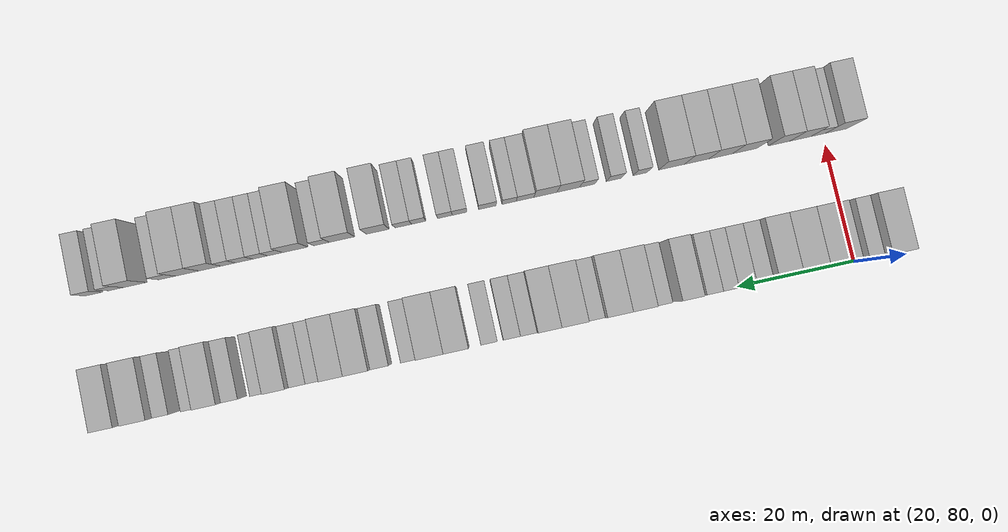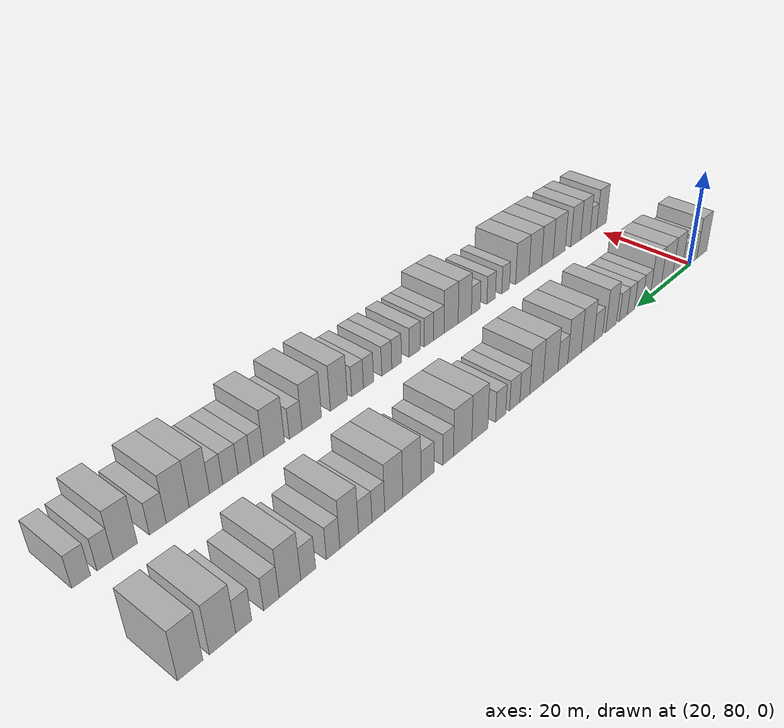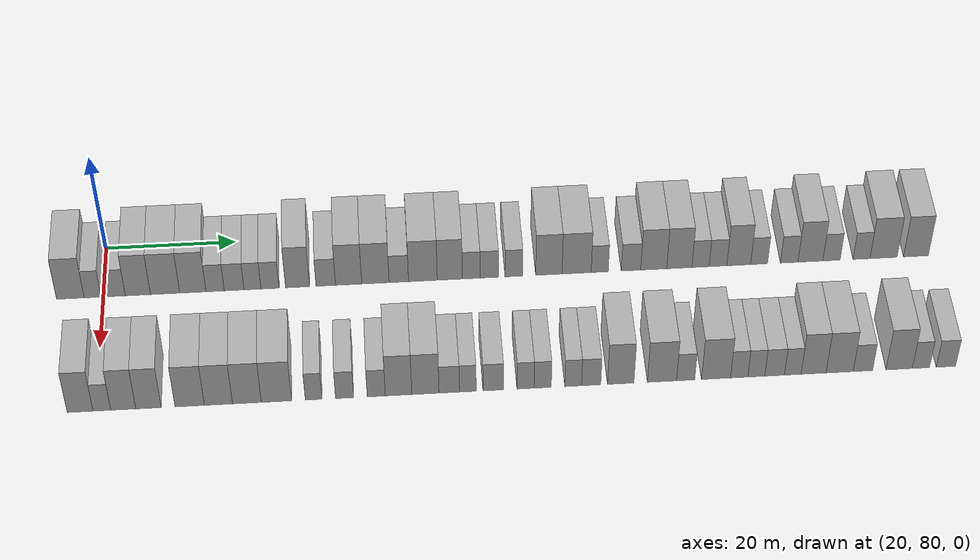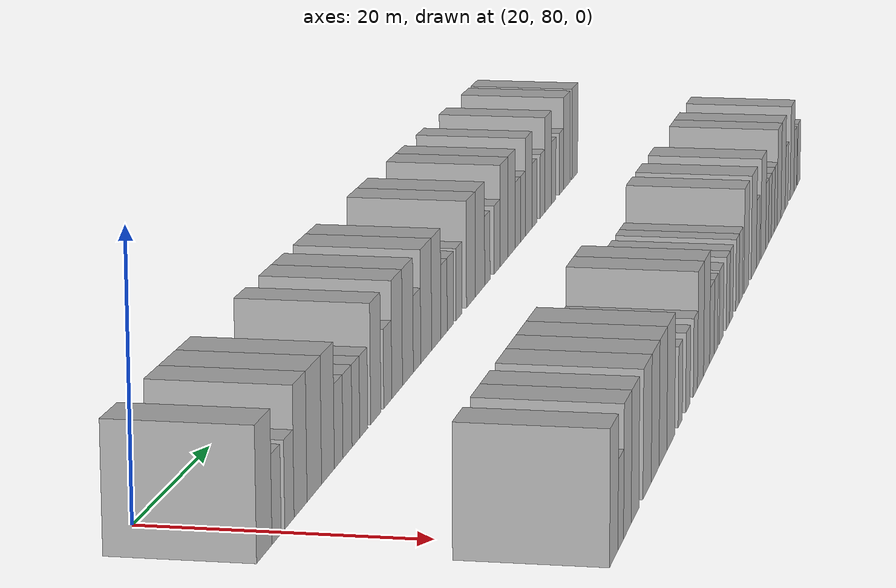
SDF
<sdf version="1.6">
 <world name="default">
  <model name="building_69">
   <static>1</static>
   <pose>25.0000 75.0625 0 0.000000 0.000000 0.000000</pose>
   <link name="link">
    <pose>0 0 4.50 0 0 0</pose>
    <collision name="collision"><geometry><box><size>10.0000 4.1604 9.0000</size></box></geometry></collision>
    <visual name="visual">
     <cast_shadows>0</cast_shadows>
     <geometry><box><size>10.0000 4.1604 9.0000</size></box></geometry>
     <material>
      <script>
       <uri>model://HANNAS_wall/materials/scripts</uri>
       <uri>model://HANNAS_wall/materials/textures</uri>
       <name>vrc/HANNAS_wall</name>
      </script>
     </material>
    </visual>
   </link>
  </model>
  <model name="building_70">
   <static>1</static>
   <pose>25.0000 78.4159 0 0.000000 0.000000 0.000000</pose>
   <link name="link">
    <pose>0 0 3.00 0 0 0</pose>
    <collision name="collision"><geometry><box><size>10.0000 2.5463 6.0000</size></box></geometry></collision>
    <visual name="visual">
     <cast_shadows>0</cast_shadows>
     <geometry><box><size>10.0000 2.5463 6.0000</size></box></geometry>
     <material>
      <script>
       <uri>model://HANNAS_wall/materials/scripts</uri>
       <uri>model://HANNAS_wall/materials/textures</uri>
       <name>vrc/HANNAS_wall</name>
      </script>
     </material>
    </visual>
   </link>
  </model>
  <model name="building_71">
   <static>1</static>
   <pose>25.0000 82.0204 0 0.000000 0.000000 0.000000</pose>
   <link name="link">
    <pose>0 0 3.00 0 0 0</pose>
    <collision name="collision"><geometry><box><size>10.0000 2.6628 6.0000</size></box></geometry></collision>
    <visual name="visual">
     <cast_shadows>0</cast_shadows>
     <geometry><box><size>10.0000 2.6628 6.0000</size></box></geometry>
     <material>
      <script>
       <uri>model://HANNAS_wall/materials/scripts</uri>
       <uri>model://HANNAS_wall/materials/textures</uri>
       <name>vrc/HANNAS_wall</name>
      </script>
     </material>
    </visual>
   </link>
  </model>
  <model name="building_72">
   <static>1</static>
   <pose>25.0000 85.2515 0 0.000000 0.000000 0.000000</pose>
   <link name="link">
    <pose>0 0 4.50 0 0 0</pose>
    <collision name="collision"><geometry><box><size>10.0000 3.7993 9.0000</size></box></geometry></collision>
    <visual name="visual">
     <cast_shadows>0</cast_shadows>
     <geometry><box><size>10.0000 3.7993 9.0000</size></box></geometry>
     <material>
      <script>
       <uri>model://HANNAS_wall/materials/scripts</uri>
       <uri>model://HANNAS_wall/materials/textures</uri>
       <name>vrc/HANNAS_wall</name>
      </script>
     </material>
    </visual>
   </link>
  </model>
  <model name="building_73">
   <static>1</static>
   <pose>25.0000 89.3614 0 0.000000 0.000000 0.000000</pose>
   <link name="link">
    <pose>0 0 4.50 0 0 0</pose>
    <collision name="collision"><geometry><box><size>10.0000 4.4205 9.0000</size></box></geometry></collision>
    <visual name="visual">
     <cast_shadows>0</cast_shadows>
     <geometry><box><size>10.0000 4.4205 9.0000</size></box></geometry>
     <material>
      <script>
       <uri>model://HANNAS_wall/materials/scripts</uri>
       <uri>model://HANNAS_wall/materials/textures</uri>
       <name>vrc/HANNAS_wall</name>
      </script>
     </material>
    </visual>
   </link>
  </model>
  <model name="building_74">
   <static>1</static>
   <pose>25.0000 93.5649 0 0.000000 0.000000 0.000000</pose>
   <link name="link">
    <pose>0 0 4.50 0 0 0</pose>
    <collision name="collision"><geometry><box><size>10.0000 3.9865 9.0000</size></box></geometry></collision>
    <visual name="visual">
     <cast_shadows>0</cast_shadows>
     <geometry><box><size>10.0000 3.9865 9.0000</size></box></geometry>
     <material>
      <script>
       <uri>model://HANNAS_wall/materials/scripts</uri>
       <uri>model://HANNAS_wall/materials/textures</uri>
       <name>vrc/HANNAS_wall</name>
      </script>
     </material>
    </visual>
   </link>
  </model>
  <model name="building_75">
   <static>1</static>
   <pose>25.0000 96.9447 0 0.000000 0.000000 0.000000</pose>
   <link name="link">
    <pose>0 0 3.00 0 0 0</pose>
    <collision name="collision"><geometry><box><size>10.0000 2.7731 6.0000</size></box></geometry></collision>
    <visual name="visual">
     <cast_shadows>0</cast_shadows>
     <geometry><box><size>10.0000 2.7731 6.0000</size></box></geometry>
     <material>
      <script>
       <uri>model://HANNAS_wall/materials/scripts</uri>
       <uri>model://HANNAS_wall/materials/textures</uri>
       <name>vrc/HANNAS_wall</name>
      </script>
     </material>
    </visual>
   </link>
  </model>
  <model name="building_76">
   <static>1</static>
   <pose>25.0000 99.8287 0 0.000000 0.000000 0.000000</pose>
   <link name="link">
    <pose>0 0 3.00 0 0 0</pose>
    <collision name="collision"><geometry><box><size>10.0000 2.9950 6.0000</size></box></geometry></collision>
    <visual name="visual">
     <cast_shadows>0</cast_shadows>
     <geometry><box><size>10.0000 2.9950 6.0000</size></box></geometry>
     <material>
      <script>
       <uri>model://HANNAS_wall/materials/scripts</uri>
       <uri>model://HANNAS_wall/materials/textures</uri>
       <name>vrc/HANNAS_wall</name>
      </script>
     </material>
    </visual>
   </link>
  </model>
  <model name="building_77">
   <static>1</static>
   <pose>25.0000 102.6149 0 0.000000 0.000000 0.000000</pose>
   <link name="link">
    <pose>0 0 3.00 0 0 0</pose>
    <collision name="collision"><geometry><box><size>10.0000 2.5773 6.0000</size></box></geometry></collision>
    <visual name="visual">
     <cast_shadows>0</cast_shadows>
     <geometry><box><size>10.0000 2.5773 6.0000</size></box></geometry>
     <material>
      <script>
       <uri>model://HANNAS_wall/materials/scripts</uri>
       <uri>model://HANNAS_wall/materials/textures</uri>
       <name>vrc/HANNAS_wall</name>
      </script>
     </material>
    </visual>
   </link>
  </model>
  <model name="building_78">
   <static>1</static>
   <pose>25.0000 105.2779 0 0.000000 0.000000 0.000000</pose>
   <link name="link">
    <pose>0 0 3.00 0 0 0</pose>
    <collision name="collision"><geometry><box><size>10.0000 2.7487 6.0000</size></box></geometry></collision>
    <visual name="visual">
     <cast_shadows>0</cast_shadows>
     <geometry><box><size>10.0000 2.7487 6.0000</size></box></geometry>
     <material>
      <script>
       <uri>model://HANNAS_wall/materials/scripts</uri>
       <uri>model://HANNAS_wall/materials/textures</uri>
       <name>vrc/HANNAS_wall</name>
      </script>
     </material>
    </visual>
   </link>
  </model>
  <model name="building_79">
   <static>1</static>
   <pose>25.0000 109.4675 0 0.000000 0.000000 0.000000</pose>
   <link name="link">
    <pose>0 0 4.50 0 0 0</pose>
    <collision name="collision"><geometry><box><size>10.0000 3.6304 9.0000</size></box></geometry></collision>
    <visual name="visual">
     <cast_shadows>0</cast_shadows>
     <geometry><box><size>10.0000 3.6304 9.0000</size></box></geometry>
     <material>
      <script>
       <uri>model://HANNAS_wall/materials/scripts</uri>
       <uri>model://HANNAS_wall/materials/textures</uri>
       <name>vrc/HANNAS_wall</name>
      </script>
     </material>
    </visual>
   </link>
  </model>
  <model name="building_80">
   <static>1</static>
   <pose>25.0000 113.7620 0 0.000000 0.000000 0.000000</pose>
   <link name="link">
    <pose>0 0 3.00 0 0 0</pose>
    <collision name="collision"><geometry><box><size>10.0000 2.9586 6.0000</size></box></geometry></collision>
    <visual name="visual">
     <cast_shadows>0</cast_shadows>
     <geometry><box><size>10.0000 2.9586 6.0000</size></box></geometry>
     <material>
      <script>
       <uri>model://HANNAS_wall/materials/scripts</uri>
       <uri>model://HANNAS_wall/materials/textures</uri>
       <name>vrc/HANNAS_wall</name>
      </script>
     </material>
    </visual>
   </link>
  </model>
  <model name="building_81">
   <static>1</static>
   <pose>25.0000 117.2376 0 0.000000 0.000000 0.000000</pose>
   <link name="link">
    <pose>0 0 4.50 0 0 0</pose>
    <collision name="collision"><geometry><box><size>10.0000 3.9926 9.0000</size></box></geometry></collision>
    <visual name="visual">
     <cast_shadows>0</cast_shadows>
     <geometry><box><size>10.0000 3.9926 9.0000</size></box></geometry>
     <material>
      <script>
       <uri>model://HANNAS_wall/materials/scripts</uri>
       <uri>model://HANNAS_wall/materials/textures</uri>
       <name>vrc/HANNAS_wall</name>
      </script>
     </material>
    </visual>
   </link>
  </model>
  <model name="building_82">
   <static>1</static>
   <pose>25.0000 121.3221 0 0.000000 0.000000 0.000000</pose>
   <link name="link">
    <pose>0 0 4.50 0 0 0</pose>
    <collision name="collision"><geometry><box><size>10.0000 4.1764 9.0000</size></box></geometry></collision>
    <visual name="visual">
     <cast_shadows>0</cast_shadows>
     <geometry><box><size>10.0000 4.1764 9.0000</size></box></geometry>
     <material>
      <script>
       <uri>model://HANNAS_wall/materials/scripts</uri>
       <uri>model://HANNAS_wall/materials/textures</uri>
       <name>vrc/HANNAS_wall</name>
      </script>
     </material>
    </visual>
   </link>
  </model>
  <model name="building_83">
   <static>1</static>
   <pose>25.0000 124.8883 0 0.000000 0.000000 0.000000</pose>
   <link name="link">
    <pose>0 0 3.00 0 0 0</pose>
    <collision name="collision"><geometry><box><size>10.0000 2.9561 6.0000</size></box></geometry></collision>
    <visual name="visual">
     <cast_shadows>0</cast_shadows>
     <geometry><box><size>10.0000 2.9561 6.0000</size></box></geometry>
     <material>
      <script>
       <uri>model://HANNAS_wall/materials/scripts</uri>
       <uri>model://HANNAS_wall/materials/textures</uri>
       <name>vrc/HANNAS_wall</name>
      </script>
     </material>
    </visual>
   </link>
  </model>
  <model name="building_84">
   <static>1</static>
   <pose>25.0000 128.5668 0 0.000000 0.000000 0.000000</pose>
   <link name="link">
    <pose>0 0 4.50 0 0 0</pose>
    <collision name="collision"><geometry><box><size>10.0000 4.4007 9.0000</size></box></geometry></collision>
    <visual name="visual">
     <cast_shadows>0</cast_shadows>
     <geometry><box><size>10.0000 4.4007 9.0000</size></box></geometry>
     <material>
      <script>
       <uri>model://HANNAS_wall/materials/scripts</uri>
       <uri>model://HANNAS_wall/materials/textures</uri>
       <name>vrc/HANNAS_wall</name>
      </script>
     </material>
    </visual>
   </link>
  </model>
  <model name="building_85">
   <static>1</static>
   <pose>25.0000 132.6856 0 0.000000 0.000000 0.000000</pose>
   <link name="link">
    <pose>0 0 4.50 0 0 0</pose>
    <collision name="collision"><geometry><box><size>10.0000 3.8369 9.0000</size></box></geometry></collision>
    <visual name="visual">
     <cast_shadows>0</cast_shadows>
     <geometry><box><size>10.0000 3.8369 9.0000</size></box></geometry>
     <material>
      <script>
       <uri>model://HANNAS_wall/materials/scripts</uri>
       <uri>model://HANNAS_wall/materials/textures</uri>
       <name>vrc/HANNAS_wall</name>
      </script>
     </material>
    </visual>
   </link>
  </model>
  <model name="building_86">
   <static>1</static>
   <pose>25.0000 135.9639 0 0.000000 0.000000 0.000000</pose>
   <link name="link">
    <pose>0 0 3.00 0 0 0</pose>
    <collision name="collision"><geometry><box><size>10.0000 2.7199 6.0000</size></box></geometry></collision>
    <visual name="visual">
     <cast_shadows>0</cast_shadows>
     <geometry><box><size>10.0000 2.7199 6.0000</size></box></geometry>
     <material>
      <script>
       <uri>model://HANNAS_wall/materials/scripts</uri>
       <uri>model://HANNAS_wall/materials/textures</uri>
       <name>vrc/HANNAS_wall</name>
      </script>
     </material>
    </visual>
   </link>
  </model>
  <model name="building_87">
   <static>1</static>
   <pose>25.0000 138.7316 0 0.000000 0.000000 0.000000</pose>
   <link name="link">
    <pose>0 0 3.00 0 0 0</pose>
    <collision name="collision"><geometry><box><size>10.0000 2.8155 6.0000</size></box></geometry></collision>
    <visual name="visual">
     <cast_shadows>0</cast_shadows>
     <geometry><box><size>10.0000 2.8155 6.0000</size></box></geometry>
     <material>
      <script>
       <uri>model://HANNAS_wall/materials/scripts</uri>
       <uri>model://HANNAS_wall/materials/textures</uri>
       <name>vrc/HANNAS_wall</name>
      </script>
     </material>
    </visual>
   </link>
  </model>
  <model name="building_88">
   <static>1</static>
   <pose>25.0000 142.4893 0 0.000000 0.000000 0.000000</pose>
   <link name="link">
    <pose>0 0 3.00 0 0 0</pose>
    <collision name="collision"><geometry><box><size>10.0000 2.6997 6.0000</size></box></geometry></collision>
    <visual name="visual">
     <cast_shadows>0</cast_shadows>
     <geometry><box><size>10.0000 2.6997 6.0000</size></box></geometry>
     <material>
      <script>
       <uri>model://HANNAS_wall/materials/scripts</uri>
       <uri>model://HANNAS_wall/materials/textures</uri>
       <name>vrc/HANNAS_wall</name>
      </script>
     </material>
    </visual>
   </link>
  </model>
  <model name="building_89">
   <static>1</static>
   <pose>25.0000 147.8630 0 0.000000 0.000000 0.000000</pose>
   <link name="link">
    <pose>0 0 4.50 0 0 0</pose>
    <collision name="collision"><geometry><box><size>10.0000 4.0477 9.0000</size></box></geometry></collision>
    <visual name="visual">
     <cast_shadows>0</cast_shadows>
     <geometry><box><size>10.0000 4.0477 9.0000</size></box></geometry>
     <material>
      <script>
       <uri>model://HANNAS_wall/materials/scripts</uri>
       <uri>model://HANNAS_wall/materials/textures</uri>
       <name>vrc/HANNAS_wall</name>
      </script>
     </material>
    </visual>
   </link>
  </model>
  <model name="building_90">
   <static>1</static>
   <pose>25.0000 152.1242 0 0.000000 0.000000 0.000000</pose>
   <link name="link">
    <pose>0 0 4.50 0 0 0</pose>
    <collision name="collision"><geometry><box><size>10.0000 4.4747 9.0000</size></box></geometry></collision>
    <visual name="visual">
     <cast_shadows>0</cast_shadows>
     <geometry><box><size>10.0000 4.4747 9.0000</size></box></geometry>
     <material>
      <script>
       <uri>model://HANNAS_wall/materials/scripts</uri>
       <uri>model://HANNAS_wall/materials/textures</uri>
       <name>vrc/HANNAS_wall</name>
      </script>
     </material>
    </visual>
   </link>
  </model>
  <model name="building_91">
   <static>1</static>
   <pose>25.0000 155.6704 0 0.000000 0.000000 0.000000</pose>
   <link name="link">
    <pose>0 0 3.00 0 0 0</pose>
    <collision name="collision"><geometry><box><size>10.0000 2.6176 6.0000</size></box></geometry></collision>
    <visual name="visual">
     <cast_shadows>0</cast_shadows>
     <geometry><box><size>10.0000 2.6176 6.0000</size></box></geometry>
     <material>
      <script>
       <uri>model://HANNAS_wall/materials/scripts</uri>
       <uri>model://HANNAS_wall/materials/textures</uri>
       <name>vrc/HANNAS_wall</name>
      </script>
     </material>
    </visual>
   </link>
  </model>
  <model name="building_92">
   <static>1</static>
   <pose>25.0000 160.4781 0 0.000000 0.000000 0.000000</pose>
   <link name="link">
    <pose>0 0 3.00 0 0 0</pose>
    <collision name="collision"><geometry><box><size>10.0000 2.9977 6.0000</size></box></geometry></collision>
    <visual name="visual">
     <cast_shadows>0</cast_shadows>
     <geometry><box><size>10.0000 2.9977 6.0000</size></box></geometry>
     <material>
      <script>
       <uri>model://HANNAS_wall/materials/scripts</uri>
       <uri>model://HANNAS_wall/materials/textures</uri>
       <name>vrc/HANNAS_wall</name>
      </script>
     </material>
    </visual>
   </link>
  </model>
  <model name="building_93">
   <static>1</static>
   <pose>25.0000 163.9876 0 0.000000 0.000000 0.000000</pose>
   <link name="link">
    <pose>0 0 4.50 0 0 0</pose>
    <collision name="collision"><geometry><box><size>10.0000 4.0214 9.0000</size></box></geometry></collision>
    <visual name="visual">
     <cast_shadows>0</cast_shadows>
     <geometry><box><size>10.0000 4.0214 9.0000</size></box></geometry>
     <material>
      <script>
       <uri>model://HANNAS_wall/materials/scripts</uri>
       <uri>model://HANNAS_wall/materials/textures</uri>
       <name>vrc/HANNAS_wall</name>
      </script>
     </material>
    </visual>
   </link>
  </model>
  <model name="building_94">
   <static>1</static>
   <pose>25.0000 167.9422 0 0.000000 0.000000 0.000000</pose>
   <link name="link">
    <pose>0 0 4.50 0 0 0</pose>
    <collision name="collision"><geometry><box><size>10.0000 3.8877 9.0000</size></box></geometry></collision>
    <visual name="visual">
     <cast_shadows>0</cast_shadows>
     <geometry><box><size>10.0000 3.8877 9.0000</size></box></geometry>
     <material>
      <script>
       <uri>model://HANNAS_wall/materials/scripts</uri>
       <uri>model://HANNAS_wall/materials/textures</uri>
       <name>vrc/HANNAS_wall</name>
      </script>
     </material>
    </visual>
   </link>
  </model>
  <model name="building_95">
   <static>1</static>
   <pose>25.0000 171.2118 0 0.000000 0.000000 0.000000</pose>
   <link name="link">
    <pose>0 0 3.00 0 0 0</pose>
    <collision name="collision"><geometry><box><size>10.0000 2.6516 6.0000</size></box></geometry></collision>
    <visual name="visual">
     <cast_shadows>0</cast_shadows>
     <geometry><box><size>10.0000 2.6516 6.0000</size></box></geometry>
     <material>
      <script>
       <uri>model://HANNAS_wall/materials/scripts</uri>
       <uri>model://HANNAS_wall/materials/textures</uri>
       <name>vrc/HANNAS_wall</name>
      </script>
     </material>
    </visual>
   </link>
  </model>
  <model name="building_96">
   <static>1</static>
   <pose>25.0000 173.9043 0 0.000000 0.000000 0.000000</pose>
   <link name="link">
    <pose>0 0 3.00 0 0 0</pose>
    <collision name="collision"><geometry><box><size>10.0000 2.7334 6.0000</size></box></geometry></collision>
    <visual name="visual">
     <cast_shadows>0</cast_shadows>
     <geometry><box><size>10.0000 2.7334 6.0000</size></box></geometry>
     <material>
      <script>
       <uri>model://HANNAS_wall/materials/scripts</uri>
       <uri>model://HANNAS_wall/materials/textures</uri>
       <name>vrc/HANNAS_wall</name>
      </script>
     </material>
    </visual>
   </link>
  </model>
  <model name="building_97">
   <static>1</static>
   <pose>25.0000 177.1086 0 0.000000 0.000000 0.000000</pose>
   <link name="link">
    <pose>0 0 4.50 0 0 0</pose>
    <collision name="collision"><geometry><box><size>10.0000 3.6752 9.0000</size></box></geometry></collision>
    <visual name="visual">
     <cast_shadows>0</cast_shadows>
     <geometry><box><size>10.0000 3.6752 9.0000</size></box></geometry>
     <material>
      <script>
       <uri>model://HANNAS_wall/materials/scripts</uri>
       <uri>model://HANNAS_wall/materials/textures</uri>
       <name>vrc/HANNAS_wall</name>
      </script>
     </material>
    </visual>
   </link>
  </model>
  <model name="building_98">
   <static>1</static>
   <pose>25.0000 180.2520 0 0.000000 0.000000 0.000000</pose>
   <link name="link">
    <pose>0 0 3.00 0 0 0</pose>
    <collision name="collision"><geometry><box><size>10.0000 2.6116 6.0000</size></box></geometry></collision>
    <visual name="visual">
     <cast_shadows>0</cast_shadows>
     <geometry><box><size>10.0000 2.6116 6.0000</size></box></geometry>
     <material>
      <script>
       <uri>model://HANNAS_wall/materials/scripts</uri>
       <uri>model://HANNAS_wall/materials/textures</uri>
       <name>vrc/HANNAS_wall</name>
      </script>
     </material>
    </visual>
   </link>
  </model>
  <model name="building_99">
   <static>1</static>
   <pose>25.0000 184.9228 0 0.000000 0.000000 0.000000</pose>
   <link name="link">
    <pose>0 0 3.00 0 0 0</pose>
    <collision name="collision"><geometry><box><size>10.0000 2.7301 6.0000</size></box></geometry></collision>
    <visual name="visual">
     <cast_shadows>0</cast_shadows>
     <geometry><box><size>10.0000 2.7301 6.0000</size></box></geometry>
     <material>
      <script>
       <uri>model://HANNAS_wall/materials/scripts</uri>
       <uri>model://HANNAS_wall/materials/textures</uri>
       <name>vrc/HANNAS_wall</name>
      </script>
     </material>
    </visual>
   </link>
  </model>
  <model name="building_100">
   <static>1</static>
   <pose>25.0000 188.2151 0 0.000000 0.000000 0.000000</pose>
   <link name="link">
    <pose>0 0 4.50 0 0 0</pose>
    <collision name="collision"><geometry><box><size>10.0000 3.8546 9.0000</size></box></geometry></collision>
    <visual name="visual">
     <cast_shadows>0</cast_shadows>
     <geometry><box><size>10.0000 3.8546 9.0000</size></box></geometry>
     <material>
      <script>
       <uri>model://HANNAS_wall/materials/scripts</uri>
       <uri>model://HANNAS_wall/materials/textures</uri>
       <name>vrc/HANNAS_wall</name>
      </script>
     </material>
    </visual>
   </link>
  </model>
  <model name="building_101">
   <static>1</static>
   <pose>25.0000 191.4806 0 0.000000 0.000000 0.000000</pose>
   <link name="link">
    <pose>0 0 3.00 0 0 0</pose>
    <collision name="collision"><geometry><box><size>10.0000 2.6764 6.0000</size></box></geometry></collision>
    <visual name="visual">
     <cast_shadows>0</cast_shadows>
     <geometry><box><size>10.0000 2.6764 6.0000</size></box></geometry>
     <material>
      <script>
       <uri>model://HANNAS_wall/materials/scripts</uri>
       <uri>model://HANNAS_wall/materials/textures</uri>
       <name>vrc/HANNAS_wall</name>
      </script>
     </material>
    </visual>
   </link>
  </model>
  <model name="building_102">
   <static>1</static>
   <pose>25.0000 196.1406 0 0.000000 0.000000 0.000000</pose>
   <link name="link">
    <pose>0 0 3.00 0 0 0</pose>
    <collision name="collision"><geometry><box><size>10.0000 2.6436 6.0000</size></box></geometry></collision>
    <visual name="visual">
     <cast_shadows>0</cast_shadows>
     <geometry><box><size>10.0000 2.6436 6.0000</size></box></geometry>
     <material>
      <script>
       <uri>model://HANNAS_wall/materials/scripts</uri>
       <uri>model://HANNAS_wall/materials/textures</uri>
       <name>vrc/HANNAS_wall</name>
      </script>
     </material>
    </visual>
   </link>
  </model>
  <model name="building_103">
   <static>1</static>
   <pose>25.0000 199.5663 0 0.000000 0.000000 0.000000</pose>
   <link name="link">
    <pose>0 0 4.50 0 0 0</pose>
    <collision name="collision"><geometry><box><size>10.0000 4.2078 9.0000</size></box></geometry></collision>
    <visual name="visual">
     <cast_shadows>0</cast_shadows>
     <geometry><box><size>10.0000 4.2078 9.0000</size></box></geometry>
     <material>
      <script>
       <uri>model://HANNAS_wall/materials/scripts</uri>
       <uri>model://HANNAS_wall/materials/textures</uri>
       <name>vrc/HANNAS_wall</name>
      </script>
     </material>
    </visual>
   </link>
  </model>
  <model name="building_104">
   <static>1</static>
   <pose>25.0000 204.5989 0 0.000000 0.000000 0.000000</pose>
   <link name="link">
    <pose>0 0 4.50 0 0 0</pose>
    <collision name="collision"><geometry><box><size>10.0000 3.8574 9.0000</size></box></geometry></collision>
    <visual name="visual">
     <cast_shadows>0</cast_shadows>
     <geometry><box><size>10.0000 3.8574 9.0000</size></box></geometry>
     <material>
      <script>
       <uri>model://HANNAS_wall/materials/scripts</uri>
       <uri>model://HANNAS_wall/materials/textures</uri>
       <name>vrc/HANNAS_wall</name>
      </script>
     </material>
    </visual>
   </link>
  </model>
  <model name="building_177">
   <static>1</static>
   <pose>47.0000 77.6579 0 0.000000 0.000000 0.000000</pose>
   <link name="link">
    <pose>0 0 4.50 0 0 0</pose>
    <collision name="collision"><geometry><box><size>10.0000 3.7333 9.0000</size></box></geometry></collision>
    <visual name="visual">
     <cast_shadows>0</cast_shadows>
     <geometry><box><size>10.0000 3.7333 9.0000</size></box></geometry>
     <material>
      <script>
       <uri>model://HANNAS_wall/materials/scripts</uri>
       <uri>model://HANNAS_wall/materials/textures</uri>
       <name>vrc/HANNAS_wall</name>
      </script>
     </material>
    </visual>
   </link>
  </model>
  <model name="building_178">
   <static>1</static>
   <pose>47.0000 80.8089 0 0.000000 0.000000 0.000000</pose>
   <link name="link">
    <pose>0 0 3.00 0 0 0</pose>
    <collision name="collision"><geometry><box><size>10.0000 2.5687 6.0000</size></box></geometry></collision>
    <visual name="visual">
     <cast_shadows>0</cast_shadows>
     <geometry><box><size>10.0000 2.5687 6.0000</size></box></geometry>
     <material>
      <script>
       <uri>model://HANNAS_wall/materials/scripts</uri>
       <uri>model://HANNAS_wall/materials/textures</uri>
       <name>vrc/HANNAS_wall</name>
      </script>
     </material>
    </visual>
   </link>
  </model>
  <model name="building_179">
   <static>1</static>
   <pose>47.0000 83.9066 0 0.000000 0.000000 0.000000</pose>
   <link name="link">
    <pose>0 0 4.50 0 0 0</pose>
    <collision name="collision"><geometry><box><size>10.0000 3.6269 9.0000</size></box></geometry></collision>
    <visual name="visual">
     <cast_shadows>0</cast_shadows>
     <geometry><box><size>10.0000 3.6269 9.0000</size></box></geometry>
     <material>
      <script>
       <uri>model://HANNAS_wall/materials/scripts</uri>
       <uri>model://HANNAS_wall/materials/textures</uri>
       <name>vrc/HANNAS_wall</name>
      </script>
     </material>
    </visual>
   </link>
  </model>
  <model name="building_180">
   <static>1</static>
   <pose>47.0000 87.5635 0 0.000000 0.000000 0.000000</pose>
   <link name="link">
    <pose>0 0 4.50 0 0 0</pose>
    <collision name="collision"><geometry><box><size>10.0000 3.6869 9.0000</size></box></geometry></collision>
    <visual name="visual">
     <cast_shadows>0</cast_shadows>
     <geometry><box><size>10.0000 3.6869 9.0000</size></box></geometry>
     <material>
      <script>
       <uri>model://HANNAS_wall/materials/scripts</uri>
       <uri>model://HANNAS_wall/materials/textures</uri>
       <name>vrc/HANNAS_wall</name>
      </script>
     </material>
    </visual>
   </link>
  </model>
  <model name="building_181">
   <static>1</static>
   <pose>47.0000 93.5370 0 0.000000 0.000000 0.000000</pose>
   <link name="link">
    <pose>0 0 4.50 0 0 0</pose>
    <collision name="collision"><geometry><box><size>10.0000 4.2600 9.0000</size></box></geometry></collision>
    <visual name="visual">
     <cast_shadows>0</cast_shadows>
     <geometry><box><size>10.0000 4.2600 9.0000</size></box></geometry>
     <material>
      <script>
       <uri>model://HANNAS_wall/materials/scripts</uri>
       <uri>model://HANNAS_wall/materials/textures</uri>
       <name>vrc/HANNAS_wall</name>
      </script>
     </material>
    </visual>
   </link>
  </model>
  <model name="building_182">
   <static>1</static>
   <pose>47.0000 97.7146 0 0.000000 0.000000 0.000000</pose>
   <link name="link">
    <pose>0 0 4.50 0 0 0</pose>
    <collision name="collision"><geometry><box><size>10.0000 4.0952 9.0000</size></box></geometry></collision>
    <visual name="visual">
     <cast_shadows>0</cast_shadows>
     <geometry><box><size>10.0000 4.0952 9.0000</size></box></geometry>
     <material>
      <script>
       <uri>model://HANNAS_wall/materials/scripts</uri>
       <uri>model://HANNAS_wall/materials/textures</uri>
       <name>vrc/HANNAS_wall</name>
      </script>
     </material>
    </visual>
   </link>
  </model>
  <model name="building_183">
   <static>1</static>
   <pose>47.0000 101.8665 0 0.000000 0.000000 0.000000</pose>
   <link name="link">
    <pose>0 0 4.50 0 0 0</pose>
    <collision name="collision"><geometry><box><size>10.0000 4.2086 9.0000</size></box></geometry></collision>
    <visual name="visual">
     <cast_shadows>0</cast_shadows>
     <geometry><box><size>10.0000 4.2086 9.0000</size></box></geometry>
     <material>
      <script>
       <uri>model://HANNAS_wall/materials/scripts</uri>
       <uri>model://HANNAS_wall/materials/textures</uri>
       <name>vrc/HANNAS_wall</name>
      </script>
     </material>
    </visual>
   </link>
  </model>
  <model name="building_184">
   <static>1</static>
   <pose>47.0000 106.1769 0 0.000000 0.000000 0.000000</pose>
   <link name="link">
    <pose>0 0 4.50 0 0 0</pose>
    <collision name="collision"><geometry><box><size>10.0000 4.4122 9.0000</size></box></geometry></collision>
    <visual name="visual">
     <cast_shadows>0</cast_shadows>
     <geometry><box><size>10.0000 4.4122 9.0000</size></box></geometry>
     <material>
      <script>
       <uri>model://HANNAS_wall/materials/scripts</uri>
       <uri>model://HANNAS_wall/materials/textures</uri>
       <name>vrc/HANNAS_wall</name>
      </script>
     </material>
    </visual>
   </link>
  </model>
  <model name="building_185">
   <static>1</static>
   <pose>47.0000 111.5953 0 0.000000 0.000000 0.000000</pose>
   <link name="link">
    <pose>0 0 3.00 0 0 0</pose>
    <collision name="collision"><geometry><box><size>10.0000 2.4246 6.0000</size></box></geometry></collision>
    <visual name="visual">
     <cast_shadows>0</cast_shadows>
     <geometry><box><size>10.0000 2.4246 6.0000</size></box></geometry>
     <material>
      <script>
       <uri>model://HANNAS_wall/materials/scripts</uri>
       <uri>model://HANNAS_wall/materials/textures</uri>
       <name>vrc/HANNAS_wall</name>
      </script>
     </material>
    </visual>
   </link>
  </model>
  <model name="building_186">
   <static>1</static>
   <pose>47.0000 116.1195 0 0.000000 0.000000 0.000000</pose>
   <link name="link">
    <pose>0 0 3.00 0 0 0</pose>
    <collision name="collision"><geometry><box><size>10.0000 2.6238 6.0000</size></box></geometry></collision>
    <visual name="visual">
     <cast_shadows>0</cast_shadows>
     <geometry><box><size>10.0000 2.6238 6.0000</size></box></geometry>
     <material>
      <script>
       <uri>model://HANNAS_wall/materials/scripts</uri>
       <uri>model://HANNAS_wall/materials/textures</uri>
       <name>vrc/HANNAS_wall</name>
      </script>
     </material>
    </visual>
   </link>
  </model>
  <model name="building_187">
   <static>1</static>
   <pose>47.0000 120.7515 0 0.000000 0.000000 0.000000</pose>
   <link name="link">
    <pose>0 0 3.00 0 0 0</pose>
    <collision name="collision"><geometry><box><size>10.0000 2.6401 6.0000</size></box></geometry></collision>
    <visual name="visual">
     <cast_shadows>0</cast_shadows>
     <geometry><box><size>10.0000 2.6401 6.0000</size></box></geometry>
     <material>
      <script>
       <uri>model://HANNAS_wall/materials/scripts</uri>
       <uri>model://HANNAS_wall/materials/textures</uri>
       <name>vrc/HANNAS_wall</name>
      </script>
     </material>
    </visual>
   </link>
  </model>
  <model name="building_188">
   <static>1</static>
   <pose>47.0000 124.0101 0 0.000000 0.000000 0.000000</pose>
   <link name="link">
    <pose>0 0 4.50 0 0 0</pose>
    <collision name="collision"><geometry><box><size>10.0000 3.8771 9.0000</size></box></geometry></collision>
    <visual name="visual">
     <cast_shadows>0</cast_shadows>
     <geometry><box><size>10.0000 3.8771 9.0000</size></box></geometry>
     <material>
      <script>
       <uri>model://HANNAS_wall/materials/scripts</uri>
       <uri>model://HANNAS_wall/materials/textures</uri>
       <name>vrc/HANNAS_wall</name>
      </script>
     </material>
    </visual>
   </link>
  </model>
  <model name="building_189">
   <static>1</static>
   <pose>47.0000 127.9451 0 0.000000 0.000000 0.000000</pose>
   <link name="link">
    <pose>0 0 4.50 0 0 0</pose>
    <collision name="collision"><geometry><box><size>10.0000 3.9930 9.0000</size></box></geometry></collision>
    <visual name="visual">
     <cast_shadows>0</cast_shadows>
     <geometry><box><size>10.0000 3.9930 9.0000</size></box></geometry>
     <material>
      <script>
       <uri>model://HANNAS_wall/materials/scripts</uri>
       <uri>model://HANNAS_wall/materials/textures</uri>
       <name>vrc/HANNAS_wall</name>
      </script>
     </material>
    </visual>
   </link>
  </model>
  <model name="building_190">
   <static>1</static>
   <pose>47.0000 131.4394 0 0.000000 0.000000 0.000000</pose>
   <link name="link">
    <pose>0 0 3.00 0 0 0</pose>
    <collision name="collision"><geometry><box><size>10.0000 2.9955 6.0000</size></box></geometry></collision>
    <visual name="visual">
     <cast_shadows>0</cast_shadows>
     <geometry><box><size>10.0000 2.9955 6.0000</size></box></geometry>
     <material>
      <script>
       <uri>model://HANNAS_wall/materials/scripts</uri>
       <uri>model://HANNAS_wall/materials/textures</uri>
       <name>vrc/HANNAS_wall</name>
      </script>
     </material>
    </visual>
   </link>
  </model>
  <model name="building_191">
   <static>1</static>
   <pose>47.0000 134.1648 0 0.000000 0.000000 0.000000</pose>
   <link name="link">
    <pose>0 0 3.00 0 0 0</pose>
    <collision name="collision"><geometry><box><size>10.0000 2.4554 6.0000</size></box></geometry></collision>
    <visual name="visual">
     <cast_shadows>0</cast_shadows>
     <geometry><box><size>10.0000 2.4554 6.0000</size></box></geometry>
     <material>
      <script>
       <uri>model://HANNAS_wall/materials/scripts</uri>
       <uri>model://HANNAS_wall/materials/textures</uri>
       <name>vrc/HANNAS_wall</name>
      </script>
     </material>
    </visual>
   </link>
  </model>
  <model name="building_192">
   <static>1</static>
   <pose>47.0000 137.8914 0 0.000000 0.000000 0.000000</pose>
   <link name="link">
    <pose>0 0 3.00 0 0 0</pose>
    <collision name="collision"><geometry><box><size>10.0000 2.9977 6.0000</size></box></geometry></collision>
    <visual name="visual">
     <cast_shadows>0</cast_shadows>
     <geometry><box><size>10.0000 2.9977 6.0000</size></box></geometry>
     <material>
      <script>
       <uri>model://HANNAS_wall/materials/scripts</uri>
       <uri>model://HANNAS_wall/materials/textures</uri>
       <name>vrc/HANNAS_wall</name>
      </script>
     </material>
    </visual>
   </link>
  </model>
  <model name="building_193">
   <static>1</static>
   <pose>47.0000 142.6458 0 0.000000 0.000000 0.000000</pose>
   <link name="link">
    <pose>0 0 3.00 0 0 0</pose>
    <collision name="collision"><geometry><box><size>10.0000 2.5112 6.0000</size></box></geometry></collision>
    <visual name="visual">
     <cast_shadows>0</cast_shadows>
     <geometry><box><size>10.0000 2.5112 6.0000</size></box></geometry>
     <material>
      <script>
       <uri>model://HANNAS_wall/materials/scripts</uri>
       <uri>model://HANNAS_wall/materials/textures</uri>
       <name>vrc/HANNAS_wall</name>
      </script>
     </material>
    </visual>
   </link>
  </model>
  <model name="building_194">
   <static>1</static>
   <pose>47.0000 145.1626 0 0.000000 0.000000 0.000000</pose>
   <link name="link">
    <pose>0 0 3.00 0 0 0</pose>
    <collision name="collision"><geometry><box><size>10.0000 2.5223 6.0000</size></box></geometry></collision>
    <visual name="visual">
     <cast_shadows>0</cast_shadows>
     <geometry><box><size>10.0000 2.5223 6.0000</size></box></geometry>
     <material>
      <script>
       <uri>model://HANNAS_wall/materials/scripts</uri>
       <uri>model://HANNAS_wall/materials/textures</uri>
       <name>vrc/HANNAS_wall</name>
      </script>
     </material>
    </visual>
   </link>
  </model>
  <model name="building_195">
   <static>1</static>
   <pose>47.0000 149.6546 0 0.000000 0.000000 0.000000</pose>
   <link name="link">
    <pose>0 0 3.00 0 0 0</pose>
    <collision name="collision"><geometry><box><size>10.0000 2.4617 6.0000</size></box></geometry></collision>
    <visual name="visual">
     <cast_shadows>0</cast_shadows>
     <geometry><box><size>10.0000 2.4617 6.0000</size></box></geometry>
     <material>
      <script>
       <uri>model://HANNAS_wall/materials/scripts</uri>
       <uri>model://HANNAS_wall/materials/textures</uri>
       <name>vrc/HANNAS_wall</name>
      </script>
     </material>
    </visual>
   </link>
  </model>
  <model name="building_196">
   <static>1</static>
   <pose>47.0000 152.3005 0 0.000000 0.000000 0.000000</pose>
   <link name="link">
    <pose>0 0 3.00 0 0 0</pose>
    <collision name="collision"><geometry><box><size>10.0000 2.8302 6.0000</size></box></geometry></collision>
    <visual name="visual">
     <cast_shadows>0</cast_shadows>
     <geometry><box><size>10.0000 2.8302 6.0000</size></box></geometry>
     <material>
      <script>
       <uri>model://HANNAS_wall/materials/scripts</uri>
       <uri>model://HANNAS_wall/materials/textures</uri>
       <name>vrc/HANNAS_wall</name>
      </script>
     </material>
    </visual>
   </link>
  </model>
  <model name="building_197">
   <static>1</static>
   <pose>47.0000 156.6668 0 0.000000 0.000000 0.000000</pose>
   <link name="link">
    <pose>0 0 4.50 0 0 0</pose>
    <collision name="collision"><geometry><box><size>10.0000 3.9022 9.0000</size></box></geometry></collision>
    <visual name="visual">
     <cast_shadows>0</cast_shadows>
     <geometry><box><size>10.0000 3.9022 9.0000</size></box></geometry>
     <material>
      <script>
       <uri>model://HANNAS_wall/materials/scripts</uri>
       <uri>model://HANNAS_wall/materials/textures</uri>
       <name>vrc/HANNAS_wall</name>
      </script>
     </material>
    </visual>
   </link>
  </model>
  <model name="building_198">
   <static>1</static>
   <pose>47.0000 162.7702 0 0.000000 0.000000 0.000000</pose>
   <link name="link">
    <pose>0 0 4.50 0 0 0</pose>
    <collision name="collision"><geometry><box><size>10.0000 4.3048 9.0000</size></box></geometry></collision>
    <visual name="visual">
     <cast_shadows>0</cast_shadows>
     <geometry><box><size>10.0000 4.3048 9.0000</size></box></geometry>
     <material>
      <script>
       <uri>model://HANNAS_wall/materials/scripts</uri>
       <uri>model://HANNAS_wall/materials/textures</uri>
       <name>vrc/HANNAS_wall</name>
      </script>
     </material>
    </visual>
   </link>
  </model>
  <model name="building_199">
   <static>1</static>
   <pose>47.0000 166.2699 0 0.000000 0.000000 0.000000</pose>
   <link name="link">
    <pose>0 0 3.00 0 0 0</pose>
    <collision name="collision"><geometry><box><size>10.0000 2.6945 6.0000</size></box></geometry></collision>
    <visual name="visual">
     <cast_shadows>0</cast_shadows>
     <geometry><box><size>10.0000 2.6945 6.0000</size></box></geometry>
     <material>
      <script>
       <uri>model://HANNAS_wall/materials/scripts</uri>
       <uri>model://HANNAS_wall/materials/textures</uri>
       <name>vrc/HANNAS_wall</name>
      </script>
     </material>
    </visual>
   </link>
  </model>
  <model name="building_200">
   <static>1</static>
   <pose>47.0000 170.7655 0 0.000000 0.000000 0.000000</pose>
   <link name="link">
    <pose>0 0 4.50 0 0 0</pose>
    <collision name="collision"><geometry><box><size>10.0000 4.2967 9.0000</size></box></geometry></collision>
    <visual name="visual">
     <cast_shadows>0</cast_shadows>
     <geometry><box><size>10.0000 4.2967 9.0000</size></box></geometry>
     <material>
      <script>
       <uri>model://HANNAS_wall/materials/scripts</uri>
       <uri>model://HANNAS_wall/materials/textures</uri>
       <name>vrc/HANNAS_wall</name>
      </script>
     </material>
    </visual>
   </link>
  </model>
  <model name="building_201">
   <static>1</static>
   <pose>47.0000 174.1961 0 0.000000 0.000000 0.000000</pose>
   <link name="link">
    <pose>0 0 3.00 0 0 0</pose>
    <collision name="collision"><geometry><box><size>10.0000 2.5646 6.0000</size></box></geometry></collision>
    <visual name="visual">
     <cast_shadows>0</cast_shadows>
     <geometry><box><size>10.0000 2.5646 6.0000</size></box></geometry>
     <material>
      <script>
       <uri>model://HANNAS_wall/materials/scripts</uri>
       <uri>model://HANNAS_wall/materials/textures</uri>
       <name>vrc/HANNAS_wall</name>
      </script>
     </material>
    </visual>
   </link>
  </model>
  <model name="building_202">
   <static>1</static>
   <pose>47.0000 176.7379 0 0.000000 0.000000 0.000000</pose>
   <link name="link">
    <pose>0 0 3.00 0 0 0</pose>
    <collision name="collision"><geometry><box><size>10.0000 2.5189 6.0000</size></box></geometry></collision>
    <visual name="visual">
     <cast_shadows>0</cast_shadows>
     <geometry><box><size>10.0000 2.5189 6.0000</size></box></geometry>
     <material>
      <script>
       <uri>model://HANNAS_wall/materials/scripts</uri>
       <uri>model://HANNAS_wall/materials/textures</uri>
       <name>vrc/HANNAS_wall</name>
      </script>
     </material>
    </visual>
   </link>
  </model>
  <model name="building_203">
   <static>1</static>
   <pose>47.0000 179.4596 0 0.000000 0.000000 0.000000</pose>
   <link name="link">
    <pose>0 0 3.00 0 0 0</pose>
    <collision name="collision"><geometry><box><size>10.0000 2.9244 6.0000</size></box></geometry></collision>
    <visual name="visual">
     <cast_shadows>0</cast_shadows>
     <geometry><box><size>10.0000 2.9244 6.0000</size></box></geometry>
     <material>
      <script>
       <uri>model://HANNAS_wall/materials/scripts</uri>
       <uri>model://HANNAS_wall/materials/textures</uri>
       <name>vrc/HANNAS_wall</name>
      </script>
     </material>
    </visual>
   </link>
  </model>
  <model name="building_204">
   <static>1</static>
   <pose>47.0000 182.1557 0 0.000000 0.000000 0.000000</pose>
   <link name="link">
    <pose>0 0 3.00 0 0 0</pose>
    <collision name="collision"><geometry><box><size>10.0000 2.4678 6.0000</size></box></geometry></collision>
    <visual name="visual">
     <cast_shadows>0</cast_shadows>
     <geometry><box><size>10.0000 2.4678 6.0000</size></box></geometry>
     <material>
      <script>
       <uri>model://HANNAS_wall/materials/scripts</uri>
       <uri>model://HANNAS_wall/materials/textures</uri>
       <name>vrc/HANNAS_wall</name>
      </script>
     </material>
    </visual>
   </link>
  </model>
  <model name="building_205">
   <static>1</static>
   <pose>47.0000 185.2544 0 0.000000 0.000000 0.000000</pose>
   <link name="link">
    <pose>0 0 4.50 0 0 0</pose>
    <collision name="collision"><geometry><box><size>10.0000 3.7295 9.0000</size></box></geometry></collision>
    <visual name="visual">
     <cast_shadows>0</cast_shadows>
     <geometry><box><size>10.0000 3.7295 9.0000</size></box></geometry>
     <material>
      <script>
       <uri>model://HANNAS_wall/materials/scripts</uri>
       <uri>model://HANNAS_wall/materials/textures</uri>
       <name>vrc/HANNAS_wall</name>
      </script>
     </material>
    </visual>
   </link>
  </model>
  <model name="building_206">
   <static>1</static>
   <pose>47.0000 189.1369 0 0.000000 0.000000 0.000000</pose>
   <link name="link">
    <pose>0 0 4.50 0 0 0</pose>
    <collision name="collision"><geometry><box><size>10.0000 4.0355 9.0000</size></box></geometry></collision>
    <visual name="visual">
     <cast_shadows>0</cast_shadows>
     <geometry><box><size>10.0000 4.0355 9.0000</size></box></geometry>
     <material>
      <script>
       <uri>model://HANNAS_wall/materials/scripts</uri>
       <uri>model://HANNAS_wall/materials/textures</uri>
       <name>vrc/HANNAS_wall</name>
      </script>
     </material>
    </visual>
   </link>
  </model>
  <model name="building_207">
   <static>1</static>
   <pose>47.0000 192.5999 0 0.000000 0.000000 0.000000</pose>
   <link name="link">
    <pose>0 0 3.00 0 0 0</pose>
    <collision name="collision"><geometry><box><size>10.0000 2.8905 6.0000</size></box></geometry></collision>
    <visual name="visual">
     <cast_shadows>0</cast_shadows>
     <geometry><box><size>10.0000 2.8905 6.0000</size></box></geometry>
     <material>
      <script>
       <uri>model://HANNAS_wall/materials/scripts</uri>
       <uri>model://HANNAS_wall/materials/textures</uri>
       <name>vrc/HANNAS_wall</name>
      </script>
     </material>
    </visual>
   </link>
  </model>
  <model name="building_208">
   <static>1</static>
   <pose>47.0000 198.0062 0 0.000000 0.000000 0.000000</pose>
   <link name="link">
    <pose>0 0 4.50 0 0 0</pose>
    <collision name="collision"><geometry><box><size>10.0000 3.9221 9.0000</size></box></geometry></collision>
    <visual name="visual">
     <cast_shadows>0</cast_shadows>
     <geometry><box><size>10.0000 3.9221 9.0000</size></box></geometry>
     <material>
      <script>
       <uri>model://HANNAS_wall/materials/scripts</uri>
       <uri>model://HANNAS_wall/materials/textures</uri>
       <name>vrc/HANNAS_wall</name>
      </script>
     </material>
    </visual>
   </link>
  </model>
  <model name="building_209">
   <static>1</static>
   <pose>47.0000 201.2528 0 0.000000 0.000000 0.000000</pose>
   <link name="link">
    <pose>0 0 3.00 0 0 0</pose>
    <collision name="collision"><geometry><box><size>10.0000 2.5712 6.0000</size></box></geometry></collision>
    <visual name="visual">
     <cast_shadows>0</cast_shadows>
     <geometry><box><size>10.0000 2.5712 6.0000</size></box></geometry>
     <material>
      <script>
       <uri>model://HANNAS_wall/materials/scripts</uri>
       <uri>model://HANNAS_wall/materials/textures</uri>
       <name>vrc/HANNAS_wall</name>
      </script>
     </material>
    </visual>
   </link>
  </model>
  <model name="building_210">
   <static>1</static>
   <pose>47.0000 204.9885 0 0.000000 0.000000 0.000000</pose>
   <link name="link">
    <pose>0 0 3.00 0 0 0</pose>
    <collision name="collision"><geometry><box><size>10.0000 2.9001 6.0000</size></box></geometry></collision>
    <visual name="visual">
     <cast_shadows>0</cast_shadows>
     <geometry><box><size>10.0000 2.9001 6.0000</size></box></geometry>
     <material>
      <script>
       <uri>model://HANNAS_wall/materials/scripts</uri>
       <uri>model://HANNAS_wall/materials/textures</uri>
       <name>vrc/HANNAS_wall</name>
      </script>
     </material>
    </visual>
   </link>
  </model>
 </world>
</sdf>
